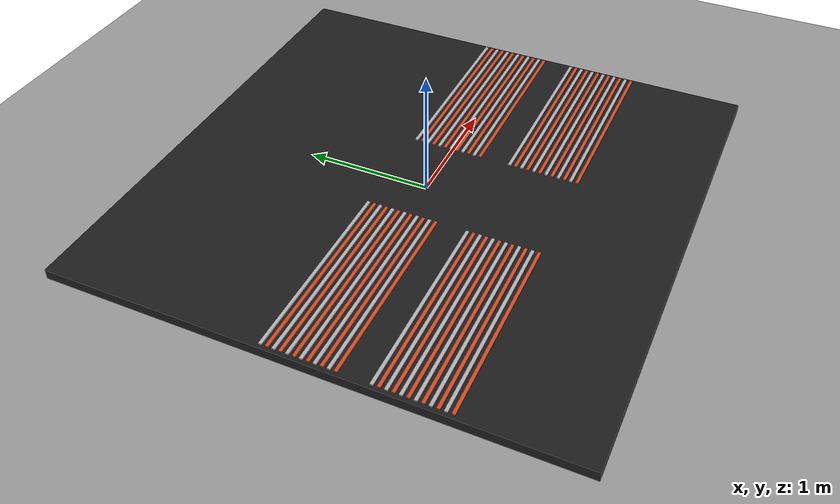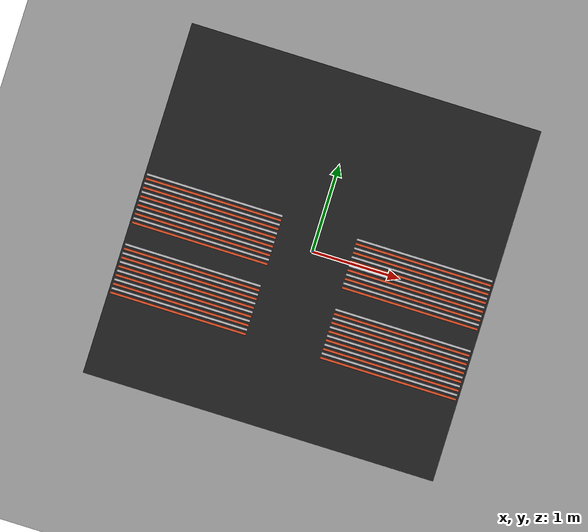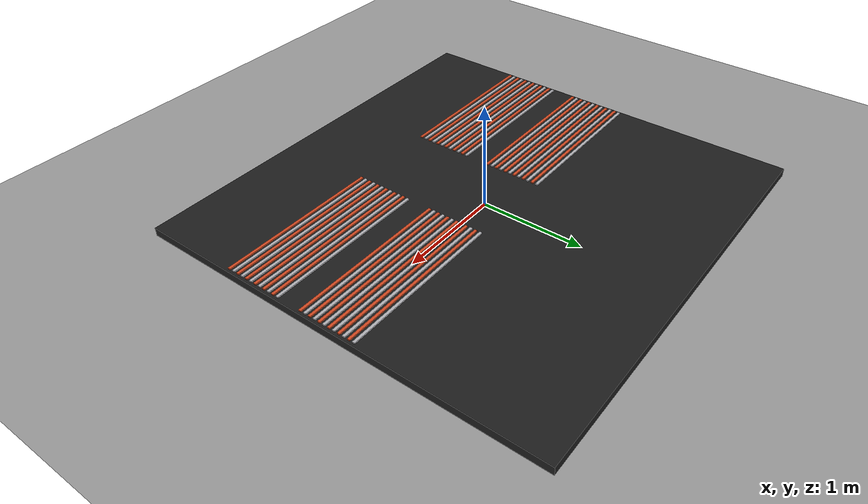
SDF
<sdf version="1.9">
 <world name="electrolysis_polygon_8_baths">
  <model name="ground_plane">
   <static>true</static>
   <link name="link">
    <collision name="collision">
     <geometry><plane><normal>0 0 1</normal><size>20 20</size></plane></geometry>
    </collision>
    <visual name="visual">
     <geometry><plane><normal>0 0 1</normal><size>20 20</size></plane></geometry>
     <material><ambient>0.62 0.62 0.62 1</ambient><diffuse>0.62 0.62 0.62 1</diffuse></material>
    </visual>
   </link>
  </model>
  <model name="polygon_platform">
   <static>true</static>
   <pose>0.0000 0.0000 0.0400 0 0 0</pose>
   <link name="link">
    <collision name="collision"><geometry><box><size>4.0000 4.0000 0.0800</size></box></geometry></collision>
    <visual name="visual">
     <geometry><box><size>4.0000 4.0000 0.0800</size></box></geometry>
     <material><ambient>0.12 0.12 0.12 1</ambient><diffuse>0.12 0.12 0.12 1</diffuse></material>
    </visual>
   </link>
  </model>
  <model name="bath_1_anode_01">
   <static>true</static>
   <pose>-1.2000 -1.0750 0.0800 0 0 0</pose>
   <link name="link">
    <collision name="collision"><geometry><box><size>1.5500 0.0250 0.0250</size></box></geometry></collision>
    <visual name="visual">
     <geometry><box><size>1.5500 0.0250 0.0250</size></box></geometry>
     <material><ambient>0.85 0.30 0.14 1</ambient><diffuse>0.85 0.30 0.14 1</diffuse></material>
    </visual>
   </link>
  </model>
  <model name="bath_1_cathode_02">
   <static>true</static>
   <pose>-1.2000 -1.0250 0.0800 0 0 0</pose>
   <link name="link">
    <collision name="collision"><geometry><box><size>1.5500 0.0250 0.0250</size></box></geometry></collision>
    <visual name="visual">
     <geometry><box><size>1.5500 0.0250 0.0250</size></box></geometry>
     <material><ambient>0.72 0.72 0.74 1</ambient><diffuse>0.72 0.72 0.74 1</diffuse></material>
    </visual>
   </link>
  </model>
  <model name="bath_1_anode_03">
   <static>true</static>
   <pose>-1.2000 -0.9750 0.0800 0 0 0</pose>
   <link name="link">
    <collision name="collision"><geometry><box><size>1.5500 0.0250 0.0250</size></box></geometry></collision>
    <visual name="visual">
     <geometry><box><size>1.5500 0.0250 0.0250</size></box></geometry>
     <material><ambient>0.85 0.30 0.14 1</ambient><diffuse>0.85 0.30 0.14 1</diffuse></material>
    </visual>
   </link>
  </model>
  <model name="bath_1_cathode_04">
   <static>true</static>
   <pose>-1.2000 -0.9250 0.0800 0 0 0</pose>
   <link name="link">
    <collision name="collision"><geometry><box><size>1.5500 0.0250 0.0250</size></box></geometry></collision>
    <visual name="visual">
     <geometry><box><size>1.5500 0.0250 0.0250</size></box></geometry>
     <material><ambient>0.72 0.72 0.74 1</ambient><diffuse>0.72 0.72 0.74 1</diffuse></material>
    </visual>
   </link>
  </model>
  <model name="bath_1_anode_05">
   <static>true</static>
   <pose>-1.2000 -0.8750 0.0800 0 0 0</pose>
   <link name="link">
    <collision name="collision"><geometry><box><size>1.5500 0.0250 0.0250</size></box></geometry></collision>
    <visual name="visual">
     <geometry><box><size>1.5500 0.0250 0.0250</size></box></geometry>
     <material><ambient>0.85 0.30 0.14 1</ambient><diffuse>0.85 0.30 0.14 1</diffuse></material>
    </visual>
   </link>
  </model>
  <model name="bath_1_cathode_06">
   <static>true</static>
   <pose>-1.2000 -0.8250 0.0800 0 0 0</pose>
   <link name="link">
    <collision name="collision"><geometry><box><size>1.5500 0.0250 0.0250</size></box></geometry></collision>
    <visual name="visual">
     <geometry><box><size>1.5500 0.0250 0.0250</size></box></geometry>
     <material><ambient>0.72 0.72 0.74 1</ambient><diffuse>0.72 0.72 0.74 1</diffuse></material>
    </visual>
   </link>
  </model>
  <model name="bath_1_anode_07">
   <static>true</static>
   <pose>-1.2000 -0.7750 0.0800 0 0 0</pose>
   <link name="link">
    <collision name="collision"><geometry><box><size>1.5500 0.0250 0.0250</size></box></geometry></collision>
    <visual name="visual">
     <geometry><box><size>1.5500 0.0250 0.0250</size></box></geometry>
     <material><ambient>0.85 0.30 0.14 1</ambient><diffuse>0.85 0.30 0.14 1</diffuse></material>
    </visual>
   </link>
  </model>
  <model name="bath_1_cathode_08">
   <static>true</static>
   <pose>-1.2000 -0.7250 0.0800 0 0 0</pose>
   <link name="link">
    <collision name="collision"><geometry><box><size>1.5500 0.0250 0.0250</size></box></geometry></collision>
    <visual name="visual">
     <geometry><box><size>1.5500 0.0250 0.0250</size></box></geometry>
     <material><ambient>0.72 0.72 0.74 1</ambient><diffuse>0.72 0.72 0.74 1</diffuse></material>
    </visual>
   </link>
  </model>
  <model name="bath_1_anode_09">
   <static>true</static>
   <pose>-1.2000 -0.6750 0.0800 0 0 0</pose>
   <link name="link">
    <collision name="collision"><geometry><box><size>1.5500 0.0250 0.0250</size></box></geometry></collision>
    <visual name="visual">
     <geometry><box><size>1.5500 0.0250 0.0250</size></box></geometry>
     <material><ambient>0.85 0.30 0.14 1</ambient><diffuse>0.85 0.30 0.14 1</diffuse></material>
    </visual>
   </link>
  </model>
  <model name="bath_1_cathode_10">
   <static>true</static>
   <pose>-1.2000 -0.6250 0.0800 0 0 0</pose>
   <link name="link">
    <collision name="collision"><geometry><box><size>1.5500 0.0250 0.0250</size></box></geometry></collision>
    <visual name="visual">
     <geometry><box><size>1.5500 0.0250 0.0250</size></box></geometry>
     <material><ambient>0.72 0.72 0.74 1</ambient><diffuse>0.72 0.72 0.74 1</diffuse></material>
    </visual>
   </link>
  </model>
  <model name="bath_1_anode_11">
   <static>true</static>
   <pose>-1.2000 -0.5750 0.0800 0 0 0</pose>
   <link name="link">
    <collision name="collision"><geometry><box><size>1.5500 0.0250 0.0250</size></box></geometry></collision>
    <visual name="visual">
     <geometry><box><size>1.5500 0.0250 0.0250</size></box></geometry>
     <material><ambient>0.85 0.30 0.14 1</ambient><diffuse>0.85 0.30 0.14 1</diffuse></material>
    </visual>
   </link>
  </model>
  <model name="bath_1_cathode_12">
   <static>true</static>
   <pose>-1.2000 -0.5250 0.0800 0 0 0</pose>
   <link name="link">
    <collision name="collision"><geometry><box><size>1.5500 0.0250 0.0250</size></box></geometry></collision>
    <visual name="visual">
     <geometry><box><size>1.5500 0.0250 0.0250</size></box></geometry>
     <material><ambient>0.72 0.72 0.74 1</ambient><diffuse>0.72 0.72 0.74 1</diffuse></material>
    </visual>
   </link>
  </model>
  <model name="bath_2_anode_01">
   <static>true</static>
   <pose>-1.2000 -0.2750 0.0800 0 0 0</pose>
   <link name="link">
    <collision name="collision"><geometry><box><size>1.5500 0.0250 0.0250</size></box></geometry></collision>
    <visual name="visual">
     <geometry><box><size>1.5500 0.0250 0.0250</size></box></geometry>
     <material><ambient>0.85 0.30 0.14 1</ambient><diffuse>0.85 0.30 0.14 1</diffuse></material>
    </visual>
   </link>
  </model>
  <model name="bath_2_cathode_02">
   <static>true</static>
   <pose>-1.2000 -0.2250 0.0800 0 0 0</pose>
   <link name="link">
    <collision name="collision"><geometry><box><size>1.5500 0.0250 0.0250</size></box></geometry></collision>
    <visual name="visual">
     <geometry><box><size>1.5500 0.0250 0.0250</size></box></geometry>
     <material><ambient>0.72 0.72 0.74 1</ambient><diffuse>0.72 0.72 0.74 1</diffuse></material>
    </visual>
   </link>
  </model>
  <model name="bath_2_anode_03">
   <static>true</static>
   <pose>-1.2000 -0.1750 0.0800 0 0 0</pose>
   <link name="link">
    <collision name="collision"><geometry><box><size>1.5500 0.0250 0.0250</size></box></geometry></collision>
    <visual name="visual">
     <geometry><box><size>1.5500 0.0250 0.0250</size></box></geometry>
     <material><ambient>0.85 0.30 0.14 1</ambient><diffuse>0.85 0.30 0.14 1</diffuse></material>
    </visual>
   </link>
  </model>
  <model name="bath_2_cathode_04">
   <static>true</static>
   <pose>-1.2000 -0.1250 0.0800 0 0 0</pose>
   <link name="link">
    <collision name="collision"><geometry><box><size>1.5500 0.0250 0.0250</size></box></geometry></collision>
    <visual name="visual">
     <geometry><box><size>1.5500 0.0250 0.0250</size></box></geometry>
     <material><ambient>0.72 0.72 0.74 1</ambient><diffuse>0.72 0.72 0.74 1</diffuse></material>
    </visual>
   </link>
  </model>
  <model name="bath_2_anode_05">
   <static>true</static>
   <pose>-1.2000 -0.0750 0.0800 0 0 0</pose>
   <link name="link">
    <collision name="collision"><geometry><box><size>1.5500 0.0250 0.0250</size></box></geometry></collision>
    <visual name="visual">
     <geometry><box><size>1.5500 0.0250 0.0250</size></box></geometry>
     <material><ambient>0.85 0.30 0.14 1</ambient><diffuse>0.85 0.30 0.14 1</diffuse></material>
    </visual>
   </link>
  </model>
  <model name="bath_2_cathode_06">
   <static>true</static>
   <pose>-1.2000 -0.0250 0.0800 0 0 0</pose>
   <link name="link">
    <collision name="collision"><geometry><box><size>1.5500 0.0250 0.0250</size></box></geometry></collision>
    <visual name="visual">
     <geometry><box><size>1.5500 0.0250 0.0250</size></box></geometry>
     <material><ambient>0.72 0.72 0.74 1</ambient><diffuse>0.72 0.72 0.74 1</diffuse></material>
    </visual>
   </link>
  </model>
  <model name="bath_2_anode_07">
   <static>true</static>
   <pose>-1.2000 0.0250 0.0800 0 0 0</pose>
   <link name="link">
    <collision name="collision"><geometry><box><size>1.5500 0.0250 0.0250</size></box></geometry></collision>
    <visual name="visual">
     <geometry><box><size>1.5500 0.0250 0.0250</size></box></geometry>
     <material><ambient>0.85 0.30 0.14 1</ambient><diffuse>0.85 0.30 0.14 1</diffuse></material>
    </visual>
   </link>
  </model>
  <model name="bath_2_cathode_08">
   <static>true</static>
   <pose>-1.2000 0.0750 0.0800 0 0 0</pose>
   <link name="link">
    <collision name="collision"><geometry><box><size>1.5500 0.0250 0.0250</size></box></geometry></collision>
    <visual name="visual">
     <geometry><box><size>1.5500 0.0250 0.0250</size></box></geometry>
     <material><ambient>0.72 0.72 0.74 1</ambient><diffuse>0.72 0.72 0.74 1</diffuse></material>
    </visual>
   </link>
  </model>
  <model name="bath_2_anode_09">
   <static>true</static>
   <pose>-1.2000 0.1250 0.0800 0 0 0</pose>
   <link name="link">
    <collision name="collision"><geometry><box><size>1.5500 0.0250 0.0250</size></box></geometry></collision>
    <visual name="visual">
     <geometry><box><size>1.5500 0.0250 0.0250</size></box></geometry>
     <material><ambient>0.85 0.30 0.14 1</ambient><diffuse>0.85 0.30 0.14 1</diffuse></material>
    </visual>
   </link>
  </model>
  <model name="bath_2_cathode_10">
   <static>true</static>
   <pose>-1.2000 0.1750 0.0800 0 0 0</pose>
   <link name="link">
    <collision name="collision"><geometry><box><size>1.5500 0.0250 0.0250</size></box></geometry></collision>
    <visual name="visual">
     <geometry><box><size>1.5500 0.0250 0.0250</size></box></geometry>
     <material><ambient>0.72 0.72 0.74 1</ambient><diffuse>0.72 0.72 0.74 1</diffuse></material>
    </visual>
   </link>
  </model>
  <model name="bath_2_anode_11">
   <static>true</static>
   <pose>-1.2000 0.2250 0.0800 0 0 0</pose>
   <link name="link">
    <collision name="collision"><geometry><box><size>1.5500 0.0250 0.0250</size></box></geometry></collision>
    <visual name="visual">
     <geometry><box><size>1.5500 0.0250 0.0250</size></box></geometry>
     <material><ambient>0.85 0.30 0.14 1</ambient><diffuse>0.85 0.30 0.14 1</diffuse></material>
    </visual>
   </link>
  </model>
  <model name="bath_2_cathode_12">
   <static>true</static>
   <pose>-1.2000 0.2750 0.0800 0 0 0</pose>
   <link name="link">
    <collision name="collision"><geometry><box><size>1.5500 0.0250 0.0250</size></box></geometry></collision>
    <visual name="visual">
     <geometry><box><size>1.5500 0.0250 0.0250</size></box></geometry>
     <material><ambient>0.72 0.72 0.74 1</ambient><diffuse>0.72 0.72 0.74 1</diffuse></material>
    </visual>
   </link>
  </model>
  <model name="bath_5_anode_01">
   <static>true</static>
   <pose>1.2000 -1.0750 0.0800 0 0 0</pose>
   <link name="link">
    <collision name="collision"><geometry><box><size>1.5500 0.0250 0.0250</size></box></geometry></collision>
    <visual name="visual">
     <geometry><box><size>1.5500 0.0250 0.0250</size></box></geometry>
     <material><ambient>0.85 0.30 0.14 1</ambient><diffuse>0.85 0.30 0.14 1</diffuse></material>
    </visual>
   </link>
  </model>
  <model name="bath_5_cathode_02">
   <static>true</static>
   <pose>1.2000 -1.0250 0.0800 0 0 0</pose>
   <link name="link">
    <collision name="collision"><geometry><box><size>1.5500 0.0250 0.0250</size></box></geometry></collision>
    <visual name="visual">
     <geometry><box><size>1.5500 0.0250 0.0250</size></box></geometry>
     <material><ambient>0.72 0.72 0.74 1</ambient><diffuse>0.72 0.72 0.74 1</diffuse></material>
    </visual>
   </link>
  </model>
  <model name="bath_5_anode_03">
   <static>true</static>
   <pose>1.2000 -0.9750 0.0800 0 0 0</pose>
   <link name="link">
    <collision name="collision"><geometry><box><size>1.5500 0.0250 0.0250</size></box></geometry></collision>
    <visual name="visual">
     <geometry><box><size>1.5500 0.0250 0.0250</size></box></geometry>
     <material><ambient>0.85 0.30 0.14 1</ambient><diffuse>0.85 0.30 0.14 1</diffuse></material>
    </visual>
   </link>
  </model>
  <model name="bath_5_cathode_04">
   <static>true</static>
   <pose>1.2000 -0.9250 0.0800 0 0 0</pose>
   <link name="link">
    <collision name="collision"><geometry><box><size>1.5500 0.0250 0.0250</size></box></geometry></collision>
    <visual name="visual">
     <geometry><box><size>1.5500 0.0250 0.0250</size></box></geometry>
     <material><ambient>0.72 0.72 0.74 1</ambient><diffuse>0.72 0.72 0.74 1</diffuse></material>
    </visual>
   </link>
  </model>
  <model name="bath_5_anode_05">
   <static>true</static>
   <pose>1.2000 -0.8750 0.0800 0 0 0</pose>
   <link name="link">
    <collision name="collision"><geometry><box><size>1.5500 0.0250 0.0250</size></box></geometry></collision>
    <visual name="visual">
     <geometry><box><size>1.5500 0.0250 0.0250</size></box></geometry>
     <material><ambient>0.85 0.30 0.14 1</ambient><diffuse>0.85 0.30 0.14 1</diffuse></material>
    </visual>
   </link>
  </model>
  <model name="bath_5_cathode_06">
   <static>true</static>
   <pose>1.2000 -0.8250 0.0800 0 0 0</pose>
   <link name="link">
    <collision name="collision"><geometry><box><size>1.5500 0.0250 0.0250</size></box></geometry></collision>
    <visual name="visual">
     <geometry><box><size>1.5500 0.0250 0.0250</size></box></geometry>
     <material><ambient>0.72 0.72 0.74 1</ambient><diffuse>0.72 0.72 0.74 1</diffuse></material>
    </visual>
   </link>
  </model>
  <model name="bath_5_anode_07">
   <static>true</static>
   <pose>1.2000 -0.7750 0.0800 0 0 0</pose>
   <link name="link">
    <collision name="collision"><geometry><box><size>1.5500 0.0250 0.0250</size></box></geometry></collision>
    <visual name="visual">
     <geometry><box><size>1.5500 0.0250 0.0250</size></box></geometry>
     <material><ambient>0.85 0.30 0.14 1</ambient><diffuse>0.85 0.30 0.14 1</diffuse></material>
    </visual>
   </link>
  </model>
  <model name="bath_5_cathode_08">
   <static>true</static>
   <pose>1.2000 -0.7250 0.0800 0 0 0</pose>
   <link name="link">
    <collision name="collision"><geometry><box><size>1.5500 0.0250 0.0250</size></box></geometry></collision>
    <visual name="visual">
     <geometry><box><size>1.5500 0.0250 0.0250</size></box></geometry>
     <material><ambient>0.72 0.72 0.74 1</ambient><diffuse>0.72 0.72 0.74 1</diffuse></material>
    </visual>
   </link>
  </model>
  <model name="bath_5_anode_09">
   <static>true</static>
   <pose>1.2000 -0.6750 0.0800 0 0 0</pose>
   <link name="link">
    <collision name="collision"><geometry><box><size>1.5500 0.0250 0.0250</size></box></geometry></collision>
    <visual name="visual">
     <geometry><box><size>1.5500 0.0250 0.0250</size></box></geometry>
     <material><ambient>0.85 0.30 0.14 1</ambient><diffuse>0.85 0.30 0.14 1</diffuse></material>
    </visual>
   </link>
  </model>
  <model name="bath_5_cathode_10">
   <static>true</static>
   <pose>1.2000 -0.6250 0.0800 0 0 0</pose>
   <link name="link">
    <collision name="collision"><geometry><box><size>1.5500 0.0250 0.0250</size></box></geometry></collision>
    <visual name="visual">
     <geometry><box><size>1.5500 0.0250 0.0250</size></box></geometry>
     <material><ambient>0.72 0.72 0.74 1</ambient><diffuse>0.72 0.72 0.74 1</diffuse></material>
    </visual>
   </link>
  </model>
  <model name="bath_5_anode_11">
   <static>true</static>
   <pose>1.2000 -0.5750 0.0800 0 0 0</pose>
   <link name="link">
    <collision name="collision"><geometry><box><size>1.5500 0.0250 0.0250</size></box></geometry></collision>
    <visual name="visual">
     <geometry><box><size>1.5500 0.0250 0.0250</size></box></geometry>
     <material><ambient>0.85 0.30 0.14 1</ambient><diffuse>0.85 0.30 0.14 1</diffuse></material>
    </visual>
   </link>
  </model>
  <model name="bath_5_cathode_12">
   <static>true</static>
   <pose>1.2000 -0.5250 0.0800 0 0 0</pose>
   <link name="link">
    <collision name="collision"><geometry><box><size>1.5500 0.0250 0.0250</size></box></geometry></collision>
    <visual name="visual">
     <geometry><box><size>1.5500 0.0250 0.0250</size></box></geometry>
     <material><ambient>0.72 0.72 0.74 1</ambient><diffuse>0.72 0.72 0.74 1</diffuse></material>
    </visual>
   </link>
  </model>
  <model name="bath_6_anode_01">
   <static>true</static>
   <pose>1.2000 -0.2750 0.0800 0 0 0</pose>
   <link name="link">
    <collision name="collision"><geometry><box><size>1.5500 0.0250 0.0250</size></box></geometry></collision>
    <visual name="visual">
     <geometry><box><size>1.5500 0.0250 0.0250</size></box></geometry>
     <material><ambient>0.85 0.30 0.14 1</ambient><diffuse>0.85 0.30 0.14 1</diffuse></material>
    </visual>
   </link>
  </model>
  <model name="bath_6_cathode_02">
   <static>true</static>
   <pose>1.2000 -0.2250 0.0800 0 0 0</pose>
   <link name="link">
    <collision name="collision"><geometry><box><size>1.5500 0.0250 0.0250</size></box></geometry></collision>
    <visual name="visual">
     <geometry><box><size>1.5500 0.0250 0.0250</size></box></geometry>
     <material><ambient>0.72 0.72 0.74 1</ambient><diffuse>0.72 0.72 0.74 1</diffuse></material>
    </visual>
   </link>
  </model>
  <model name="bath_6_anode_03">
   <static>true</static>
   <pose>1.2000 -0.1750 0.0800 0 0 0</pose>
   <link name="link">
    <collision name="collision"><geometry><box><size>1.5500 0.0250 0.0250</size></box></geometry></collision>
    <visual name="visual">
     <geometry><box><size>1.5500 0.0250 0.0250</size></box></geometry>
     <material><ambient>0.85 0.30 0.14 1</ambient><diffuse>0.85 0.30 0.14 1</diffuse></material>
    </visual>
   </link>
  </model>
  <model name="bath_6_cathode_04">
   <static>true</static>
   <pose>1.2000 -0.1250 0.0800 0 0 0</pose>
   <link name="link">
    <collision name="collision"><geometry><box><size>1.5500 0.0250 0.0250</size></box></geometry></collision>
    <visual name="visual">
     <geometry><box><size>1.5500 0.0250 0.0250</size></box></geometry>
     <material><ambient>0.72 0.72 0.74 1</ambient><diffuse>0.72 0.72 0.74 1</diffuse></material>
    </visual>
   </link>
  </model>
  <model name="bath_6_anode_05">
   <static>true</static>
   <pose>1.2000 -0.0750 0.0800 0 0 0</pose>
   <link name="link">
    <collision name="collision"><geometry><box><size>1.5500 0.0250 0.0250</size></box></geometry></collision>
    <visual name="visual">
     <geometry><box><size>1.5500 0.0250 0.0250</size></box></geometry>
     <material><ambient>0.85 0.30 0.14 1</ambient><diffuse>0.85 0.30 0.14 1</diffuse></material>
    </visual>
   </link>
  </model>
  <model name="bath_6_cathode_06">
   <static>true</static>
   <pose>1.2000 -0.0250 0.0800 0 0 0</pose>
   <link name="link">
    <collision name="collision"><geometry><box><size>1.5500 0.0250 0.0250</size></box></geometry></collision>
    <visual name="visual">
     <geometry><box><size>1.5500 0.0250 0.0250</size></box></geometry>
     <material><ambient>0.72 0.72 0.74 1</ambient><diffuse>0.72 0.72 0.74 1</diffuse></material>
    </visual>
   </link>
  </model>
  <model name="bath_6_anode_07">
   <static>true</static>
   <pose>1.2000 0.0250 0.0800 0 0 0</pose>
   <link name="link">
    <collision name="collision"><geometry><box><size>1.5500 0.0250 0.0250</size></box></geometry></collision>
    <visual name="visual">
     <geometry><box><size>1.5500 0.0250 0.0250</size></box></geometry>
     <material><ambient>0.85 0.30 0.14 1</ambient><diffuse>0.85 0.30 0.14 1</diffuse></material>
    </visual>
   </link>
  </model>
  <model name="bath_6_cathode_08">
   <static>true</static>
   <pose>1.2000 0.0750 0.0800 0 0 0</pose>
   <link name="link">
    <collision name="collision"><geometry><box><size>1.5500 0.0250 0.0250</size></box></geometry></collision>
    <visual name="visual">
     <geometry><box><size>1.5500 0.0250 0.0250</size></box></geometry>
     <material><ambient>0.72 0.72 0.74 1</ambient><diffuse>0.72 0.72 0.74 1</diffuse></material>
    </visual>
   </link>
  </model>
  <model name="bath_6_anode_09">
   <static>true</static>
   <pose>1.2000 0.1250 0.0800 0 0 0</pose>
   <link name="link">
    <collision name="collision"><geometry><box><size>1.5500 0.0250 0.0250</size></box></geometry></collision>
    <visual name="visual">
     <geometry><box><size>1.5500 0.0250 0.0250</size></box></geometry>
     <material><ambient>0.85 0.30 0.14 1</ambient><diffuse>0.85 0.30 0.14 1</diffuse></material>
    </visual>
   </link>
  </model>
  <model name="bath_6_cathode_10">
   <static>true</static>
   <pose>1.2000 0.1750 0.0800 0 0 0</pose>
   <link name="link">
    <collision name="collision"><geometry><box><size>1.5500 0.0250 0.0250</size></box></geometry></collision>
    <visual name="visual">
     <geometry><box><size>1.5500 0.0250 0.0250</size></box></geometry>
     <material><ambient>0.72 0.72 0.74 1</ambient><diffuse>0.72 0.72 0.74 1</diffuse></material>
    </visual>
   </link>
  </model>
  <model name="bath_6_anode_11">
   <static>true</static>
   <pose>1.2000 0.2250 0.0800 0 0 0</pose>
   <link name="link">
    <collision name="collision"><geometry><box><size>1.5500 0.0250 0.0250</size></box></geometry></collision>
    <visual name="visual">
     <geometry><box><size>1.5500 0.0250 0.0250</size></box></geometry>
     <material><ambient>0.85 0.30 0.14 1</ambient><diffuse>0.85 0.30 0.14 1</diffuse></material>
    </visual>
   </link>
  </model>
  <model name="bath_6_cathode_12">
   <static>true</static>
   <pose>1.2000 0.2750 0.0800 0 0 0</pose>
   <link name="link">
    <collision name="collision"><geometry><box><size>1.5500 0.0250 0.0250</size></box></geometry></collision>
    <visual name="visual">
     <geometry><box><size>1.5500 0.0250 0.0250</size></box></geometry>
     <material><ambient>0.72 0.72 0.74 1</ambient><diffuse>0.72 0.72 0.74 1</diffuse></material>
    </visual>
   </link>
  </model>
 </world>
</sdf>
